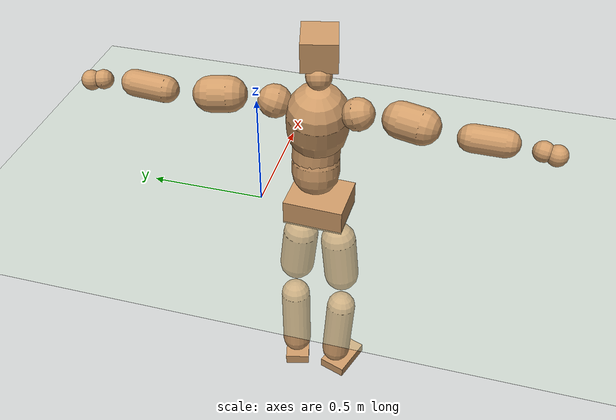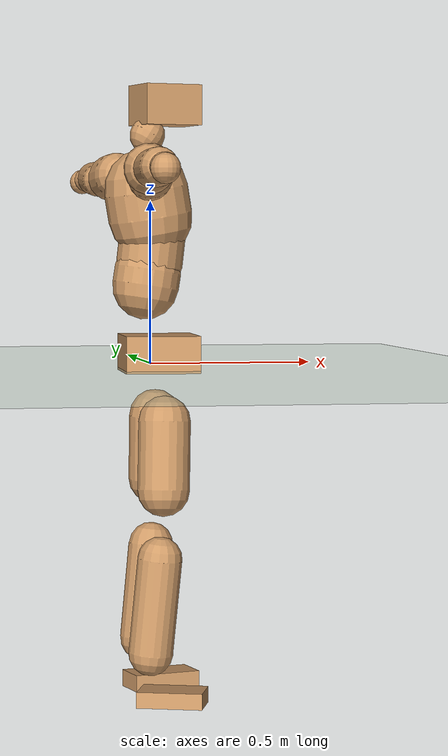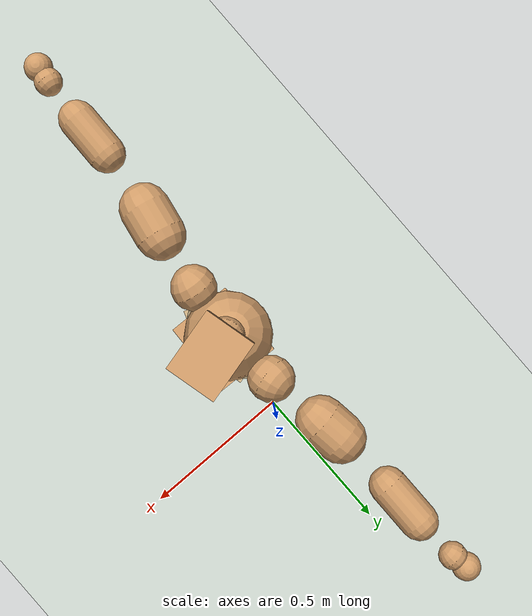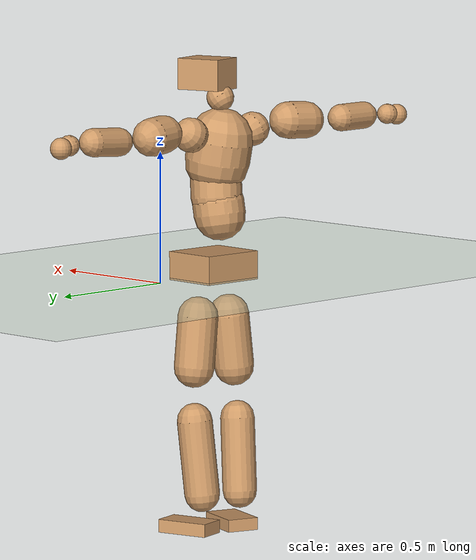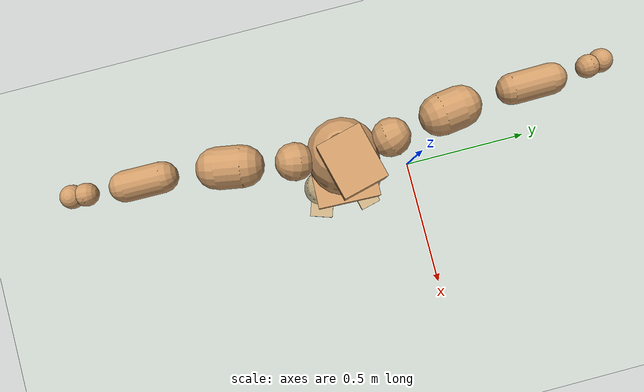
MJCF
<mujoco model="humanoid">
  <compiler coordinate="local" angle="radian"/>
  <default>
    <joint damping="0.0" armature="0.01" stiffness="0.0" limited="true"/>
    <geom conaffinity="1" condim="3" contype="7" margin="0.001" rgba="0.8 0.6 .4 1"/>
  </default>
  <asset>
    <texture type="skybox" builtin="gradient" rgb1=".4 .5 .6" rgb2="0 0 0" width="100" height="100"/>
    <texture builtin="flat" height="1278" mark="cross" markrgb="1 1 1" name="texgeom" random="0.01" rgb1="0.8 0.6 0.4" rgb2="0.8 0.6 0.4" type="cube" width="127"/>
    <texture builtin="checker" height="100" name="texplane" rgb1="0 0 0" rgb2="0.8 0.8 0.8" type="2d" width="100"/>
    <material name="MatPlane" reflectance="0.5" shininess="1" specular="1" texrepeat="60 60" texture="texplane"/>
    <material name="geom" texture="texgeom" texuniform="true"/>
  </asset>
  <worldbody>
    <light cutoff="100" diffuse="1 1 1" dir="-0 0 -1.3" directional="true" exponent="1" pos="0 0 1.3" specular=".1 .1 .1"/>
    <geom conaffinity="1" condim="3" name="floor" pos="0 0 0" rgba="0.8 0.9 0.8 1" size="100 100 .2" type="plane" material="MatPlane"/>
    <body name="Pelvis" pos="-0.003 -0.2694 0.0534">
      <freejoint name="Pelvis"/>
      <geom type="box" contype="1" conaffinity="1" density="5359.374851" pos="-0.0132 0.0005 -0.0084" size="0.11 0.128 0.0548" quat="0.9998 0.0000 0.0000 -0.0179" name="Pelvis"/>
      <body name="L_Hip" pos="-0.0123 0.0734 -0.0916">
        <joint name="L_Hip_x" type="hinge" pos="0 0 0" axis="1 0 0" stiffness="1600" damping="160" armature="0.02" range="-180.0000 180.0000"/>
        <joint name="L_Hip_y" type="hinge" pos="0 0 0" axis="0 1 0" stiffness="1600" damping="160" armature="0.02" range="-180.0000 180.0000"/>
        <joint name="L_Hip_z" type="hinge" pos="0 0 0" axis="0 0 1" stiffness="1600" damping="160" armature="0.02" range="-180.0000 180.0000"/>
        <geom type="capsule" contype="1" conaffinity="1" density="2040.816327" size="0.0777" fromto="0.0002 0.0111 -0.1071 0.0007 0.0312 -0.2997" name="L_Hip"/>
        <body name="L_Knee" pos="0.0009 0.0423 -0.4068">
          <joint name="L_Knee_x" type="hinge" pos="0 0 0" axis="1 0 0" stiffness="1600" damping="160" armature="0.02" range="-180.0000 180.0000"/>
          <joint name="L_Knee_y" type="hinge" pos="0 0 0" axis="0 1 0" stiffness="1600" damping="160" armature="0.02" range="-180.0000 180.0000"/>
          <joint name="L_Knee_z" type="hinge" pos="0 0 0" axis="0 0 1" stiffness="1600" damping="160" armature="0.02" range="-180.0000 180.0000"/>
          <geom type="capsule" contype="1" conaffinity="1" density="1234.567901" size="0.0676" fromto="-0.0096 -0.0040 -0.0971 -0.0378 -0.0157 -0.3809" name="L_Knee"/>
          <body name="L_Ankle" pos="-0.0474 -0.0197 -0.4779">
            <joint name="L_Ankle_x" type="hinge" pos="0 0 0" axis="1 0 0" stiffness="1600" damping="160" armature="0.02" range="-180.0000 180.0000"/>
            <joint name="L_Ankle_y" type="hinge" pos="0 0 0" axis="0 1 0" stiffness="1600" damping="160" armature="0.02" range="-180.0000 180.0000"/>
            <joint name="L_Ankle_z" type="hinge" pos="0 0 0" axis="0 0 1" stiffness="1600" damping="160" armature="0.02" range="-180.0000 180.0000"/>
            <geom type="box" contype="1" conaffinity="1" density="999.99999" pos="0.0678 0.0166 -0.0328" size="0.1028 0.0563 0.0252" quat="0.9928 0.0000 0.0000 0.1200" name="L_Ankle"/>
            <body name="L_Toe" pos="0.1357 0.0333 -0.0657">
              <joint name="L_Toe_x" type="hinge" pos="0 0 0" axis="1 0 0" stiffness="1000" damping="100" armature="0.02" range="-180.0000 180.0000"/>
              <joint name="L_Toe_y" type="hinge" pos="0 0 0" axis="0 1 0" stiffness="1000" damping="100" armature="0.02" range="-180.0000 180.0000"/>
              <joint name="L_Toe_z" type="hinge" pos="0 0 0" axis="0 0 1" stiffness="1000" damping="100" armature="0.02" range="-180.0000 180.0000"/>
              <geom type="box" contype="1" conaffinity="1" density="9048990.507036" pos="0.0000 0.0000 0.0322" size="0.0011 0.0028 0.0012" quat="0.9921 0.0000 0.0000 0.1252" name="L_Toe"/>
            </body>
          </body>
        </body>
      </body>
      <body name="R_Hip" pos="-0.0068 -0.0759 -0.0996">
        <joint name="R_Hip_x" type="hinge" pos="0 0 0" axis="1 0 0" stiffness="1600" damping="160" armature="0.02" range="-180.0000 180.0000"/>
        <joint name="R_Hip_y" type="hinge" pos="0 0 0" axis="0 1 0" stiffness="1600" damping="160" armature="0.02" range="-180.0000 180.0000"/>
        <joint name="R_Hip_z" type="hinge" pos="0 0 0" axis="0 0 1" stiffness="1600" damping="160" armature="0.02" range="-180.0000 180.0000"/>
        <geom type="capsule" contype="1" conaffinity="1" density="2040.816327" size="0.0773" fromto="-0.0034 -0.0110 -0.1067 -0.0098 -0.0316 -0.3076" name="R_Hip"/>
        <body name="R_Knee" pos="-0.0132 -0.0426 -0.4142">
          <joint name="R_Knee_x" type="hinge" pos="0 0 0" axis="1 0 0" stiffness="1600" damping="160" armature="0.02" range="-180.0000 180.0000"/>
          <joint name="R_Knee_y" type="hinge" pos="0 0 0" axis="0 1 0" stiffness="1600" damping="160" armature="0.02" range="-180.0000 180.0000"/>
          <joint name="R_Knee_z" type="hinge" pos="0 0 0" axis="0 0 1" stiffness="1600" damping="160" armature="0.02" range="-180.0000 180.0000"/>
          <geom type="capsule" contype="1" conaffinity="1" density="1234.567901" size="0.0664" fromto="-0.0087 0.0047 -0.0959 -0.0344 0.0183 -0.3775" name="R_Knee"/>
          <body name="R_Ankle" pos="-0.0431 0.023 -0.4734">
            <joint name="R_Ankle_x" type="hinge" pos="0 0 0" axis="1 0 0" stiffness="1600" damping="160" armature="0.02" range="-180.0000 180.0000"/>
            <joint name="R_Ankle_y" type="hinge" pos="0 0 0" axis="0 1 0" stiffness="1600" damping="160" armature="0.02" range="-180.0000 180.0000"/>
            <joint name="R_Ankle_z" type="hinge" pos="0 0 0" axis="0 0 1" stiffness="1600" damping="160" armature="0.02" range="-180.0000 180.0000"/>
            <geom type="box" contype="1" conaffinity="1" density="999.999951" pos="0.0710 -0.0240 -0.0338" size="0.0976 0.0621 0.0238" quat="0.9868 0.0000 0.0000 -0.1620" name="R_Ankle"/>
            <body name="R_Toe" pos="0.142 -0.0479 -0.0676">
              <joint name="R_Toe_x" type="hinge" pos="0 0 0" axis="1 0 0" stiffness="1000" damping="100" armature="0.02" range="-180.0000 180.0000"/>
              <joint name="R_Toe_y" type="hinge" pos="0 0 0" axis="0 1 0" stiffness="1000" damping="100" armature="0.02" range="-180.0000 180.0000"/>
              <joint name="R_Toe_z" type="hinge" pos="0 0 0" axis="0 0 1" stiffness="1000" damping="100" armature="0.02" range="-180.0000 180.0000"/>
              <geom type="box" contype="1" conaffinity="1" density="8115932.070132" pos="0.0000 0.0000 0.0350" size="0.0013 0.0029 0.0012" quat="0.9881 0.0000 0.0000 -0.1537" name="R_Toe"/>
            </body>
          </body>
        </body>
      </body>
      <body name="Torso" pos="-0.0601 0.0053 0.1409">
        <joint name="Torso_x" type="hinge" pos="0 0 0" axis="1 0 0" stiffness="2000" damping="200" armature="0.02" range="-180.0000 180.0000"/>
        <joint name="Torso_y" type="hinge" pos="0 0 0" axis="0 1 0" stiffness="2000" damping="200" armature="0.02" range="-180.0000 180.0000"/>
        <joint name="Torso_z" type="hinge" pos="0 0 0" axis="0 0 1" stiffness="2000" damping="200" armature="0.02" range="-180.0000 180.0000"/>
        <geom type="capsule" contype="1" conaffinity="1" density="2040.816327" size="0.0993" fromto="0.0156 0.0028 0.0981 0.0081 0.0014 0.0507" name="Torso"/>
        <body name="Spine" pos="0.0237 0.0042 0.1488">
          <joint name="Spine_x" type="hinge" pos="0 0 0" axis="1 0 0" stiffness="2000" damping="200" armature="0.02" range="-180.0000 180.0000"/>
          <joint name="Spine_y" type="hinge" pos="0 0 0" axis="0 1 0" stiffness="2000" damping="200" armature="0.02" range="-180.0000 180.0000"/>
          <joint name="Spine_z" type="hinge" pos="0 0 0" axis="0 0 1" stiffness="2000" damping="200" armature="0.02" range="-180.0000 180.0000"/>
          <geom type="capsule" contype="1" conaffinity="1" density="2040.816327" size="0.0982" fromto="0.0105 -0.0047 0.0975 -0.0039 0.0017 -0.0363" name="Spine"/>
          <body name="Chest" pos="0.0066 -0.0029 0.0612">
            <joint name="Chest_x" type="hinge" pos="0 0 0" axis="1 0 0" stiffness="2000" damping="200" armature="0.02" range="-180.0000 180.0000"/>
            <joint name="Chest_y" type="hinge" pos="0 0 0" axis="0 1 0" stiffness="2000" damping="200" armature="0.02" range="-180.0000 180.0000"/>
            <joint name="Chest_z" type="hinge" pos="0 0 0" axis="0 0 1" stiffness="2000" damping="200" armature="0.02" range="-180.0000 180.0000"/>
            <geom type="capsule" contype="1" conaffinity="1" density="2040.816327" size="0.1247" fromto="-0.0209 -0.0059 0.1228 -0.0075 -0.0021 0.0441" name="Chest"/>
            <body name="Neck" pos="-0.0447 -0.0145 0.242">
              <joint name="Neck_x" type="hinge" pos="0 0 0" axis="1 0 0" stiffness="1000" damping="100" armature="0.02" range="-180.0000 180.0000"/>
              <joint name="Neck_y" type="hinge" pos="0 0 0" axis="0 1 0" stiffness="1000" damping="100" armature="0.02" range="-180.0000 180.0000"/>
              <joint name="Neck_z" type="hinge" pos="0 0 0" axis="0 0 1" stiffness="1000" damping="100" armature="0.02" range="-180.0000 180.0000"/>
              <geom type="capsule" contype="1" conaffinity="1" density="1000" size="0.052" fromto="0.0269 0.0060 0.0429 0.0280 0.0063 0.0446" name="Neck"/>
              <body name="Head" pos="0.0549 0.0123 0.0876">
                <joint name="Head_x" type="hinge" pos="0 0 0" axis="1 0 0" stiffness="1000" damping="100" armature="0.02" range="-180.0000 180.0000"/>
                <joint name="Head_y" type="hinge" pos="0 0 0" axis="0 1 0" stiffness="1000" damping="100" armature="0.02" range="-180.0000 180.0000"/>
                <joint name="Head_z" type="hinge" pos="0 0 0" axis="0 0 1" stiffness="1000" damping="100" armature="0.02" range="-180.0000 180.0000"/>
                <geom type="box" contype="1" conaffinity="1" density="2250.00002" pos="0.0285 0.0071 0.0448" size="0.0877 0.0718 0.0593" quat="0.9924 0.0000 0.0000 0.1227" name="Head"/>
              </body>
            </body>
            <body name="L_Thorax" pos="-0.0157 0.0892 0.131">
              <joint name="L_Thorax_x" type="hinge" pos="0 0 0" axis="1 0 0" stiffness="1000" damping="100" armature="0.02" range="-180.0000 180.0000"/>
              <joint name="L_Thorax_y" type="hinge" pos="0 0 0" axis="0 1 0" stiffness="1000" damping="100" armature="0.02" range="-180.0000 180.0000"/>
              <joint name="L_Thorax_z" type="hinge" pos="0 0 0" axis="0 0 1" stiffness="1000" damping="100" armature="0.02" range="-180.0000 180.0000"/>
              <geom type="capsule" contype="1" conaffinity="1" density="1000" size="0.0663" fromto="-0.0151 0.0733 0.0254 -0.0155 0.0751 0.0261" name="L_Thorax"/>
              <body name="L_Shoulder" pos="-0.0306 0.1484 0.0515">
                <joint name="L_Shoulder_x" type="hinge" pos="0 0 0" axis="1 0 0" stiffness="1000" damping="100" armature="0.02" range="-720.0000 720.0000"/>
                <joint name="L_Shoulder_y" type="hinge" pos="0 0 0" axis="0 1 0" stiffness="1000" damping="100" armature="0.02" range="-720.0000 720.0000"/>
                <joint name="L_Shoulder_z" type="hinge" pos="0 0 0" axis="0 0 1" stiffness="1000" damping="100" armature="0.02" range="-720.0000 720.0000"/>
                <geom type="capsule" contype="1" conaffinity="1" density="1000" size="0.0718" fromto="-0.0136 0.1007 -0.0073 -0.0231 0.1714 -0.0124" name="L_Shoulder"/>
                <body name="L_Elbow" pos="-0.0367 0.2721 -0.0196">
                  <joint name="L_Elbow_x" type="hinge" pos="0 0 0" axis="1 0 0" stiffness="1000" damping="100" armature="0.02" range="-720.0000 720.0000"/>
                  <joint name="L_Elbow_y" type="hinge" pos="0 0 0" axis="0 1 0" stiffness="1000" damping="100" armature="0.02" range="-720.0000 720.0000"/>
                  <joint name="L_Elbow_z" type="hinge" pos="0 0 0" axis="0 0 1" stiffness="1000" damping="100" armature="0.02" range="-720.0000 720.0000"/>
                  <geom type="capsule" contype="1" conaffinity="1" density="1000" size="0.0531" fromto="-0.0001 0.0829 0.0056 -0.0004 0.2119 0.0142" name="L_Elbow"/>
                  <body name="L_Wrist" pos="-0.0005 0.2948 0.0198">
                    <joint name="L_Wrist_x" type="hinge" pos="0 0 0" axis="1 0 0" stiffness="600" damping="60" armature="0.02" range="-180.0000 180.0000"/>
                    <joint name="L_Wrist_y" type="hinge" pos="0 0 0" axis="0 1 0" stiffness="600" damping="60" armature="0.02" range="-180.0000 180.0000"/>
                    <joint name="L_Wrist_z" type="hinge" pos="0 0 0" axis="0 0 1" stiffness="600" damping="60" armature="0.02" range="-180.0000 180.0000"/>
                    <geom type="capsule" contype="1" conaffinity="1" density="1000" size="0.0388" fromto="-0.0084 0.0474 -0.0061 -0.0087 0.0493 -0.0064" name="L_Wrist"/>
                    <body name="L_Hand" pos="-0.0171 0.0967 -0.0125">
                      <joint name="L_Hand_x" type="hinge" pos="0 0 0" axis="1 0 0" stiffness="600" damping="60" armature="0.02" range="-180.0000 180.0000"/>
                      <joint name="L_Hand_y" type="hinge" pos="0 0 0" axis="0 1 0" stiffness="600" damping="60" armature="0.02" range="-180.0000 180.0000"/>
                      <joint name="L_Hand_z" type="hinge" pos="0 0 0" axis="0 0 1" stiffness="600" damping="60" armature="0.02" range="-180.0000 180.0000"/>
                      <geom type="sphere" contype="1" conaffinity="1" density="1000" size="0.0399" pos="0.0000 0.0000 0.0000" name="L_Hand"/>
                    </body>
                  </body>
                </body>
              </body>
            </body>
            <body name="R_Thorax" pos="-0.0248 -0.0989 0.1275">
              <joint name="R_Thorax_x" type="hinge" pos="0 0 0" axis="1 0 0" stiffness="1000" damping="100" armature="0.02" range="-180.0000 180.0000"/>
              <joint name="R_Thorax_y" type="hinge" pos="0 0 0" axis="0 1 0" stiffness="1000" damping="100" armature="0.02" range="-180.0000 180.0000"/>
              <joint name="R_Thorax_z" type="hinge" pos="0 0 0" axis="0 0 1" stiffness="1000" damping="100" armature="0.02" range="-180.0000 180.0000"/>
              <geom type="capsule" contype="1" conaffinity="1" density="1000" size="0.0651" fromto="-0.0084 -0.0669 0.0272 -0.0086 -0.0688 0.0280" name="R_Thorax"/>
              <body name="R_Shoulder" pos="-0.017 -0.1357 0.0552">
                <joint name="R_Shoulder_x" type="hinge" pos="0 0 0" axis="1 0 0" stiffness="1000" damping="100" armature="0.02" range="-720.0000 720.0000"/>
                <joint name="R_Shoulder_y" type="hinge" pos="0 0 0" axis="0 1 0" stiffness="1000" damping="100" armature="0.02" range="-720.0000 720.0000"/>
                <joint name="R_Shoulder_z" type="hinge" pos="0 0 0" axis="0 0 1" stiffness="1000" damping="100" armature="0.02" range="-720.0000 720.0000"/>
                <geom type="capsule" contype="1" conaffinity="1" density="1000" size="0.0713" fromto="-0.0176 -0.0997 -0.0048 -0.0323 -0.1832 -0.0089" name="R_Shoulder"/>
                <body name="R_Elbow" pos="-0.0498 -0.2828 -0.0137">
                  <joint name="R_Elbow_x" type="hinge" pos="0 0 0" axis="1 0 0" stiffness="1000" damping="100" armature="0.02" range="-720.0000 720.0000"/>
                  <joint name="R_Elbow_y" type="hinge" pos="0 0 0" axis="0 1 0" stiffness="1000" damping="100" armature="0.02" range="-720.0000 720.0000"/>
                  <joint name="R_Elbow_z" type="hinge" pos="0 0 0" axis="0 0 1" stiffness="1000" damping="100" armature="0.02" range="-720.0000 720.0000"/>
                  <geom type="capsule" contype="1" conaffinity="1" density="1000" size="0.0528" fromto="-0.0011 -0.0828 0.0006 -0.0026 -0.2072 0.0014" name="R_Elbow"/>
                  <body name="R_Wrist" pos="-0.0037 -0.2899 0.0019">
                    <joint name="R_Wrist_x" type="hinge" pos="0 0 0" axis="1 0 0" stiffness="600" damping="60" armature="0.02" range="-180.0000 180.0000"/>
                    <joint name="R_Wrist_y" type="hinge" pos="0 0 0" axis="0 1 0" stiffness="600" damping="60" armature="0.02" range="-180.0000 180.0000"/>
                    <joint name="R_Wrist_z" type="hinge" pos="0 0 0" axis="0 0 1" stiffness="600" damping="60" armature="0.02" range="-180.0000 180.0000"/>
                    <geom type="capsule" contype="1" conaffinity="1" density="1000" size="0.0391" fromto="-0.0054 -0.0480 -0.0050 -0.0056 -0.0500 -0.0052" name="R_Wrist"/>
                    <body name="R_Hand" pos="-0.0109 -0.098 -0.0101">
                      <joint name="R_Hand_x" type="hinge" pos="0 0 0" axis="1 0 0" stiffness="600" damping="60" armature="0.02" range="-180.0000 180.0000"/>
                      <joint name="R_Hand_y" type="hinge" pos="0 0 0" axis="0 1 0" stiffness="600" damping="60" armature="0.02" range="-180.0000 180.0000"/>
                      <joint name="R_Hand_z" type="hinge" pos="0 0 0" axis="0 0 1" stiffness="600" damping="60" armature="0.02" range="-180.0000 180.0000"/>
                      <geom type="sphere" contype="1" conaffinity="1" density="1000" size="0.0400" pos="0.0000 0.0000 0.0000" name="R_Hand"/>
                    </body>
                  </body>
                </body>
              </body>
            </body>
          </body>
        </body>
      </body>
    </body>
  </worldbody>
  <actuator>
    <motor name="L_Hip_x" joint="L_Hip_x" gear="500"/>
    <motor name="L_Hip_y" joint="L_Hip_y" gear="500"/>
    <motor name="L_Hip_z" joint="L_Hip_z" gear="500"/>
    <motor name="L_Knee_x" joint="L_Knee_x" gear="500"/>
    <motor name="L_Knee_y" joint="L_Knee_y" gear="500"/>
    <motor name="L_Knee_z" joint="L_Knee_z" gear="500"/>
    <motor name="L_Ankle_x" joint="L_Ankle_x" gear="500"/>
    <motor name="L_Ankle_y" joint="L_Ankle_y" gear="500"/>
    <motor name="L_Ankle_z" joint="L_Ankle_z" gear="500"/>
    <motor name="L_Toe_x" joint="L_Toe_x" gear="500"/>
    <motor name="L_Toe_y" joint="L_Toe_y" gear="500"/>
    <motor name="L_Toe_z" joint="L_Toe_z" gear="500"/>
    <motor name="R_Hip_x" joint="R_Hip_x" gear="500"/>
    <motor name="R_Hip_y" joint="R_Hip_y" gear="500"/>
    <motor name="R_Hip_z" joint="R_Hip_z" gear="500"/>
    <motor name="R_Knee_x" joint="R_Knee_x" gear="500"/>
    <motor name="R_Knee_y" joint="R_Knee_y" gear="500"/>
    <motor name="R_Knee_z" joint="R_Knee_z" gear="500"/>
    <motor name="R_Ankle_x" joint="R_Ankle_x" gear="500"/>
    <motor name="R_Ankle_y" joint="R_Ankle_y" gear="500"/>
    <motor name="R_Ankle_z" joint="R_Ankle_z" gear="500"/>
    <motor name="R_Toe_x" joint="R_Toe_x" gear="500"/>
    <motor name="R_Toe_y" joint="R_Toe_y" gear="500"/>
    <motor name="R_Toe_z" joint="R_Toe_z" gear="500"/>
    <motor name="Torso_x" joint="Torso_x" gear="500"/>
    <motor name="Torso_y" joint="Torso_y" gear="500"/>
    <motor name="Torso_z" joint="Torso_z" gear="500"/>
    <motor name="Spine_x" joint="Spine_x" gear="500"/>
    <motor name="Spine_y" joint="Spine_y" gear="500"/>
    <motor name="Spine_z" joint="Spine_z" gear="500"/>
    <motor name="Chest_x" joint="Chest_x" gear="500"/>
    <motor name="Chest_y" joint="Chest_y" gear="500"/>
    <motor name="Chest_z" joint="Chest_z" gear="500"/>
    <motor name="Neck_x" joint="Neck_x" gear="500"/>
    <motor name="Neck_y" joint="Neck_y" gear="500"/>
    <motor name="Neck_z" joint="Neck_z" gear="500"/>
    <motor name="Head_x" joint="Head_x" gear="500"/>
    <motor name="Head_y" joint="Head_y" gear="500"/>
    <motor name="Head_z" joint="Head_z" gear="500"/>
    <motor name="L_Thorax_x" joint="L_Thorax_x" gear="500"/>
    <motor name="L_Thorax_y" joint="L_Thorax_y" gear="500"/>
    <motor name="L_Thorax_z" joint="L_Thorax_z" gear="500"/>
    <motor name="L_Shoulder_x" joint="L_Shoulder_x" gear="500"/>
    <motor name="L_Shoulder_y" joint="L_Shoulder_y" gear="500"/>
    <motor name="L_Shoulder_z" joint="L_Shoulder_z" gear="500"/>
    <motor name="L_Elbow_x" joint="L_Elbow_x" gear="500"/>
    <motor name="L_Elbow_y" joint="L_Elbow_y" gear="500"/>
    <motor name="L_Elbow_z" joint="L_Elbow_z" gear="500"/>
    <motor name="L_Wrist_x" joint="L_Wrist_x" gear="500"/>
    <motor name="L_Wrist_y" joint="L_Wrist_y" gear="500"/>
    <motor name="L_Wrist_z" joint="L_Wrist_z" gear="500"/>
    <motor name="L_Hand_x" joint="L_Hand_x" gear="500"/>
    <motor name="L_Hand_y" joint="L_Hand_y" gear="500"/>
    <motor name="L_Hand_z" joint="L_Hand_z" gear="500"/>
    <motor name="R_Thorax_x" joint="R_Thorax_x" gear="500"/>
    <motor name="R_Thorax_y" joint="R_Thorax_y" gear="500"/>
    <motor name="R_Thorax_z" joint="R_Thorax_z" gear="500"/>
    <motor name="R_Shoulder_x" joint="R_Shoulder_x" gear="500"/>
    <motor name="R_Shoulder_y" joint="R_Shoulder_y" gear="500"/>
    <motor name="R_Shoulder_z" joint="R_Shoulder_z" gear="500"/>
    <motor name="R_Elbow_x" joint="R_Elbow_x" gear="500"/>
    <motor name="R_Elbow_y" joint="R_Elbow_y" gear="500"/>
    <motor name="R_Elbow_z" joint="R_Elbow_z" gear="500"/>
    <motor name="R_Wrist_x" joint="R_Wrist_x" gear="500"/>
    <motor name="R_Wrist_y" joint="R_Wrist_y" gear="500"/>
    <motor name="R_Wrist_z" joint="R_Wrist_z" gear="500"/>
    <motor name="R_Hand_x" joint="R_Hand_x" gear="500"/>
    <motor name="R_Hand_y" joint="R_Hand_y" gear="500"/>
    <motor name="R_Hand_z" joint="R_Hand_z" gear="500"/>
  </actuator>
  <contact>
    <exclude body1="Torso" body2="Chest"/>
    <exclude body1="Head" body2="Chest"/>
    <exclude body1="R_Knee" body2="R_Toe"/>
    <exclude body1="R_Knee" body2="L_Ankle"/>
    <exclude body1="R_Knee" body2="L_Toe"/>
    <exclude body1="L_Knee" body2="L_Toe"/>
    <exclude body1="L_Knee" body2="R_Ankle"/>
    <exclude body1="L_Knee" body2="R_Toe"/>
    <exclude body1="L_Shoulder" body2="Chest"/>
    <exclude body1="R_Shoulder" body2="Chest"/>
  </contact>
  <sensor/>
  <size njmax="700" nconmax="700"/>
</mujoco>
